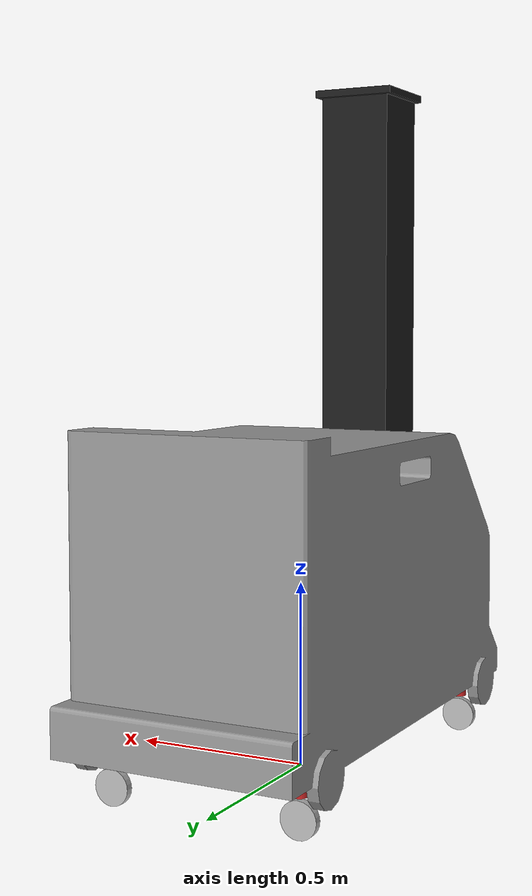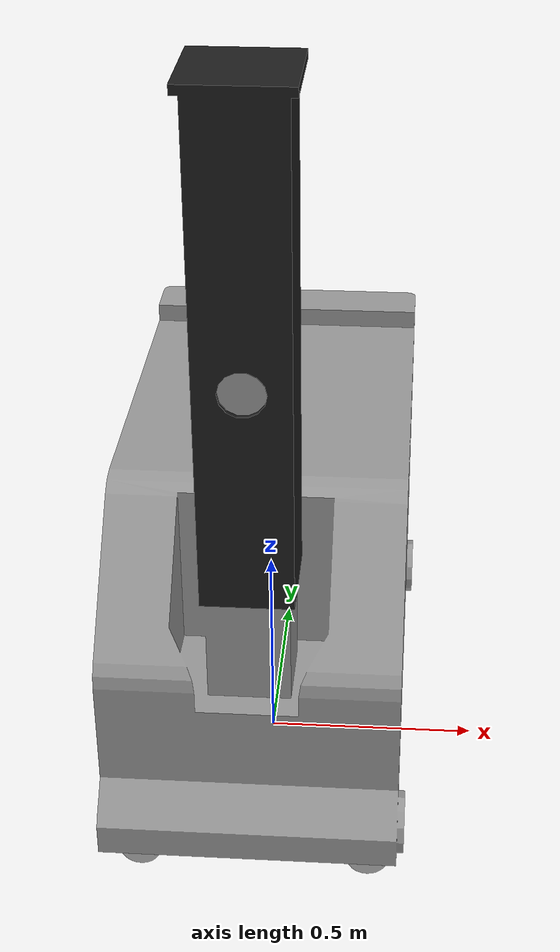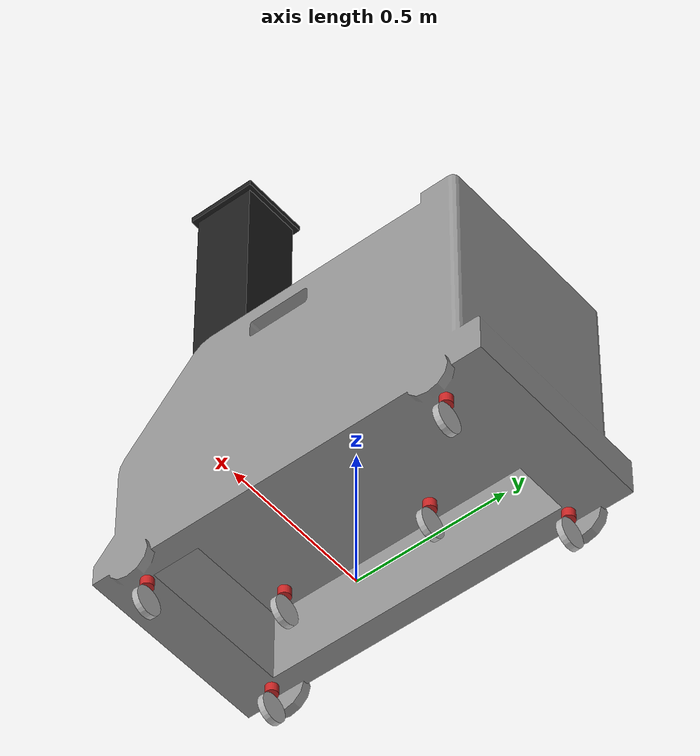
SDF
<?xml version='1.0'?>
<sdf version='1.6'>
  <model name='gtrobot_base'>
    <link name='base_footprint'>
      <pose frame=''>0 0 0 0 -0 0</pose>
      <inertial>
        <pose frame=''>0 0 0 0 -0 0</pose>
        <mass>0.01</mass>
        <inertia>
          <ixx>0.000833416</ixx>
          <ixy>0</ixy>
          <ixz>0</ixz>
          <iyy>0.000833416</iyy>
          <iyz>0</iyz>
          <izz>0.00166667</izz>
        </inertia>
      </inertial>
      <velocity_decay/>
      <gravity>1</gravity>
      <gravity>1</gravity>
      <velocity_decay/>
      <gravity>1</gravity>
      <self_collide>0</self_collide>
      <enable_wind>0</enable_wind>
      <kinematic>0</kinematic>
    </link>
    <link name='x_axis_link'>
      <pose frame=''>0 0 0 0 -0 0</pose>
      <inertial>
        <pose frame=''>0 0 0 0 -0 0</pose>
        <mass>0.01</mass>
        <inertia>
          <ixx>0.000833416</ixx>
          <ixy>0</ixy>
          <ixz>0</ixz>
          <iyy>0.000833416</iyy>
          <iyz>0</iyz>
          <izz>0.00166667</izz>
        </inertia>
      </inertial>
      <gravity>1</gravity>
      <velocity_decay/>
      <gravity>0</gravity>
      <self_collide>0</self_collide>
      <enable_wind>0</enable_wind>
      <kinematic>0</kinematic>
    </link>
    <joint name='x_axis_joint' type='prismatic'>
      <child>x_axis_link</child>
      <parent>base_footprint</parent>
      <axis>
        <xyz>1 0 0</xyz>
        <limit>
          <lower>-5</lower>
          <upper>5</upper>
          <effort>300000</effort>
          <velocity>1</velocity>
        </limit>
        <dynamics>
          <spring_reference>0</spring_reference>
          <spring_stiffness>0</spring_stiffness>
        </dynamics>
        <use_parent_model_frame>1</use_parent_model_frame>
      </axis>
    </joint>
    <link name='y_axis_link'>
      <pose frame=''>0 0 0 0 -0 0</pose>
      <inertial>
        <pose frame=''>0 0 0 0 -0 0</pose>
        <mass>0.01</mass>
        <inertia>
          <ixx>0.000833416</ixx>
          <ixy>0</ixy>
          <ixz>0</ixz>
          <iyy>0.000833416</iyy>
          <iyz>0</iyz>
          <izz>0.00166667</izz>
        </inertia>
      </inertial>
      <gravity>1</gravity>
      <velocity_decay/>
      <gravity>0</gravity>
      <self_collide>0</self_collide>
      <enable_wind>0</enable_wind>
      <kinematic>0</kinematic>
    </link>
    <joint name='y_axis_joint' type='prismatic'>
      <child>y_axis_link</child>
      <parent>x_axis_link</parent>
      <axis>
        <xyz>0 1 0</xyz>
        <limit>
          <lower>-5</lower>
          <upper>5</upper>
          <effort>300000</effort>
          <velocity>1</velocity>
        </limit>
        <dynamics>
          <spring_reference>0</spring_reference>
          <spring_stiffness>0</spring_stiffness>
        </dynamics>
        <use_parent_model_frame>1</use_parent_model_frame>
      </axis>
    </joint>
    <link name='rotate_axis_link'>
      <pose frame=''>0 0 0 0 -0 0</pose>
      <inertial>
        <pose frame=''>0 0 0.559994 0 -0 0</pose>
        <mass>100.001</mass>
        <inertia>
          <ixx>21.667</ixx>
          <ixy>0</ixy>
          <ixz>0</ixz>
          <iyy>8.33364</iyy>
          <iyz>0</iyz>
          <izz>19.3333</izz>
        </inertia>
      </inertial>
      <collision name='rotate_axis_link_fixed_joint_lump__base_link_collision'>
        <pose frame=''>0 0 0.08 0 -0 0</pose>
        <geometry>
          <mesh>
            <scale>1 1 1</scale>
            <uri>model://gtrobot_base/meshes/base_link.STL</uri>
          </mesh>
        </geometry>
        <surface>
          <contact>
            <ode>
              <kp>1e+18</kp>
              <kd>1</kd>
              <min_depth>0.001</min_depth>
            </ode>
          </contact>
          <friction>
            <ode/>
            <torsional>
              <ode/>
            </torsional>
          </friction>
          <bounce/>
        </surface>
        <max_contacts>1</max_contacts>
      </collision>
      <visual name='rotate_axis_link_fixed_joint_lump__base_link_visual'>
        <pose frame=''>0 0 0.08 0 -0 0</pose>
        <geometry>
          <mesh>
            <scale>1 1 1</scale>
            <uri>model://gtrobot_base/meshes/base_link.STL</uri>
          </mesh>
        </geometry>
        <material>
          <script>
            <name>Gazebo/Grey</name>
            <uri>file://media/materials/scripts/gazebo.material</uri>
          </script>
        </material>
      </visual>
      <velocity_decay/>
      <gravity>0</gravity>
      <gravity>1</gravity>
      <velocity_decay/>
      <gravity>1</gravity>
      <self_collide>0</self_collide>
      <enable_wind>0</enable_wind>
      <kinematic>0</kinematic>
    </link>
    <joint name='rotate_axis_joint' type='revolute'>
      <child>rotate_axis_link</child>
      <parent>y_axis_link</parent>
      <axis>
        <xyz>0 0 1</xyz>
        <limit>
          <lower>-1e+16</lower>
          <upper>1e+16</upper>
        </limit>
        <dynamics>
          <spring_reference>0</spring_reference>
          <spring_stiffness>0</spring_stiffness>
        </dynamics>
        <use_parent_model_frame>1</use_parent_model_frame>
      </axis>
    </joint>
    <link name='bl_caster_rotation_link'>
      <pose frame=''>-0.26 0.513 0.12 0 -0 0</pose>
      <inertial>
        <pose frame=''>0 0 0 0 -0 0</pose>
        <mass>1.5</mass>
        <inertia>
          <ixx>0.0009</ixx>
          <ixy>0</ixy>
          <ixz>0</ixz>
          <iyy>0.0009</iyy>
          <iyz>0</iyz>
          <izz>0.0009</izz>
        </inertia>
      </inertial>
      <collision name='bl_caster_rotation_link_collision'>
        <pose frame=''>0 0 0 0 -0 0</pose>
        <geometry>
          <cylinder>
            <length>0.03</length>
            <radius>0.02</radius>
          </cylinder>
        </geometry>
        <surface>
          <contact>
            <ode/>
          </contact>
          <friction>
            <ode/>
            <torsional>
              <ode/>
            </torsional>
          </friction>
          <bounce/>
        </surface>
        <max_contacts>10</max_contacts>
      </collision>
      <visual name='bl_caster_rotation_link_visual'>
        <pose frame=''>0 0 0 0 -0 0</pose>
        <geometry>
          <cylinder>
            <length>0.03</length>
            <radius>0.02</radius>
          </cylinder>
        </geometry>
        <material>
          <script>
            <name>Gazebo/Red</name>
            <uri>file://media/materials/scripts/gazebo.material</uri>
          </script>
        </material>
      </visual>
      <gravity>1</gravity>
      <velocity_decay/>
      <self_collide>0</self_collide>
      <enable_wind>0</enable_wind>
      <kinematic>0</kinematic>
    </link>
    <joint name='bl_caster_rotation_joint' type='revolute'>
      <child>bl_caster_rotation_link</child>
      <parent>rotate_axis_link</parent>
      <axis>
        <xyz>0 0 1</xyz>
        <limit>
          <lower>-1e+16</lower>
          <upper>1e+16</upper>
        </limit>
        <dynamics>
          <damping>1</damping>
          <friction>100000</friction>
          <spring_reference>0</spring_reference>
          <spring_stiffness>0</spring_stiffness>
        </dynamics>
        <use_parent_model_frame>1</use_parent_model_frame>
      </axis>
      <physics>
        <provide_feedback>1</provide_feedback>
        <ode>
          <provide_feedback>1</provide_feedback>
          <fudge_factor>1</fudge_factor>
          <limit>
            <cfm>0</cfm>
            <erp>0.2</erp>
          </limit>
        </ode>
      </physics>
    </joint>
    <link name='bl_caster_wheel_link'>
      <pose frame=''>-0.26 0.513 0.05 0 -0 0</pose>
      <inertial>
        <pose frame=''>0 0 0 0 -0 0</pose>
        <mass>1.5</mass>
        <inertia>
          <ixx>0.000896093</ixx>
          <ixy>0</ixy>
          <ixz>0</ixz>
          <iyy>0.000896093</iyy>
          <iyz>0</iyz>
          <izz>0.00169219</izz>
        </inertia>
      </inertial>
      <collision name='bl_caster_wheel_link_collision'>
        <pose frame=''>0 0 0 1.5708 -0 0</pose>
        <geometry>
          <cylinder>
            <length>0.02</length>
            <radius>0.0475</radius>
          </cylinder>
        </geometry>
        <surface>
          <contact>
            <ode>
              <kp>1e+07</kp>
              <kd>10</kd>
              <min_depth>0.001</min_depth>
            </ode>
          </contact>
          <friction>
            <ode>
              <mu>1</mu>
              <mu2>1</mu2>
              <fdir1>0 0 0</fdir1>
            </ode>
            <torsional>
              <ode/>
            </torsional>
          </friction>
          <bounce/>
        </surface>
        <max_contacts>4</max_contacts>
      </collision>
      <visual name='bl_caster_wheel_link_visual'>
        <pose frame=''>0 0 0 1.5708 -0 0</pose>
        <geometry>
          <cylinder>
            <length>0.02</length>
            <radius>0.0475</radius>
          </cylinder>
        </geometry>
        <material>
          <script>
            <uri>__default__</uri>
            <name>__default__</name>
          </script>
        </material>
      </visual>
      <gravity>1</gravity>
      <velocity_decay/>
      <gravity>1</gravity>
      <self_collide>0</self_collide>
      <enable_wind>0</enable_wind>
      <kinematic>0</kinematic>
    </link>
    <joint name='bl_caster_wheel_joint' type='revolute'>
      <child>bl_caster_wheel_link</child>
      <parent>bl_caster_rotation_link</parent>
      <axis>
        <xyz>0 1 0</xyz>
        <limit>
          <lower>-1e+16</lower>
          <upper>1e+16</upper>
        </limit>
        <dynamics>
          <damping>0.7</damping>
          <friction>100000</friction>
          <spring_reference>0</spring_reference>
          <spring_stiffness>0</spring_stiffness>
        </dynamics>
        <use_parent_model_frame>1</use_parent_model_frame>
      </axis>
      <physics>
        <provide_feedback>1</provide_feedback>
        <ode>
          <provide_feedback>1</provide_feedback>
          <fudge_factor>1</fudge_factor>
          <limit>
            <cfm>0</cfm>
            <erp>0.2</erp>
          </limit>
        </ode>
      </physics>
    </joint>
    <link name='br_caster_rotation_link'>
      <pose frame=''>-0.26 -0.513 0.12 0 -0 0</pose>
      <inertial>
        <pose frame=''>0 0 0 0 -0 0</pose>
        <mass>1.5</mass>
        <inertia>
          <ixx>0.0009</ixx>
          <ixy>0</ixy>
          <ixz>0</ixz>
          <iyy>0.0009</iyy>
          <iyz>0</iyz>
          <izz>0.0009</izz>
        </inertia>
      </inertial>
      <collision name='br_caster_rotation_link_collision'>
        <pose frame=''>0 0 0 0 -0 0</pose>
        <geometry>
          <cylinder>
            <length>0.03</length>
            <radius>0.02</radius>
          </cylinder>
        </geometry>
        <surface>
          <contact>
            <ode/>
          </contact>
          <friction>
            <ode/>
            <torsional>
              <ode/>
            </torsional>
          </friction>
          <bounce/>
        </surface>
        <max_contacts>10</max_contacts>
      </collision>
      <visual name='br_caster_rotation_link_visual'>
        <pose frame=''>0 0 0 0 -0 0</pose>
        <geometry>
          <cylinder>
            <length>0.03</length>
            <radius>0.02</radius>
          </cylinder>
        </geometry>
        <material>
          <script>
            <name>Gazebo/Red</name>
            <uri>file://media/materials/scripts/gazebo.material</uri>
          </script>
        </material>
      </visual>
      <gravity>1</gravity>
      <velocity_decay/>
      <self_collide>0</self_collide>
      <enable_wind>0</enable_wind>
      <kinematic>0</kinematic>
    </link>
    <joint name='br_caster_rotation_joint' type='revolute'>
      <child>br_caster_rotation_link</child>
      <parent>rotate_axis_link</parent>
      <axis>
        <xyz>0 0 1</xyz>
        <limit>
          <lower>-1e+16</lower>
          <upper>1e+16</upper>
        </limit>
        <dynamics>
          <damping>1</damping>
          <friction>100000</friction>
          <spring_reference>0</spring_reference>
          <spring_stiffness>0</spring_stiffness>
        </dynamics>
        <use_parent_model_frame>1</use_parent_model_frame>
      </axis>
      <physics>
        <provide_feedback>1</provide_feedback>
        <ode>
          <provide_feedback>1</provide_feedback>
          <fudge_factor>1</fudge_factor>
          <limit>
            <cfm>0</cfm>
            <erp>0.2</erp>
          </limit>
        </ode>
      </physics>
    </joint>
    <link name='br_caster_wheel_link'>
      <pose frame=''>-0.26 -0.513 0.05 0 -0 0</pose>
      <inertial>
        <pose frame=''>0 0 0 0 -0 0</pose>
        <mass>1.5</mass>
        <inertia>
          <ixx>0.000896093</ixx>
          <ixy>0</ixy>
          <ixz>0</ixz>
          <iyy>0.000896093</iyy>
          <iyz>0</iyz>
          <izz>0.00169219</izz>
        </inertia>
      </inertial>
      <collision name='br_caster_wheel_link_collision'>
        <pose frame=''>0 0 0 1.5708 -0 0</pose>
        <geometry>
          <cylinder>
            <length>0.02</length>
            <radius>0.0475</radius>
          </cylinder>
        </geometry>
        <surface>
          <contact>
            <ode>
              <kp>1e+07</kp>
              <kd>10</kd>
              <min_depth>0.001</min_depth>
            </ode>
          </contact>
          <friction>
            <ode>
              <mu>1</mu>
              <mu2>1</mu2>
              <fdir1>0 0 0</fdir1>
            </ode>
            <torsional>
              <ode/>
            </torsional>
          </friction>
          <bounce/>
        </surface>
        <max_contacts>4</max_contacts>
      </collision>
      <visual name='br_caster_wheel_link_visual'>
        <pose frame=''>0 0 0 1.5708 -0 0</pose>
        <geometry>
          <cylinder>
            <length>0.02</length>
            <radius>0.0475</radius>
          </cylinder>
        </geometry>
        <material>
          <script>
            <uri>__default__</uri>
            <name>__default__</name>
          </script>
        </material>
      </visual>
      <gravity>1</gravity>
      <velocity_decay/>
      <gravity>1</gravity>
      <self_collide>0</self_collide>
      <enable_wind>0</enable_wind>
      <kinematic>0</kinematic>
    </link>
    <joint name='br_caster_wheel_joint' type='revolute'>
      <child>br_caster_wheel_link</child>
      <parent>br_caster_rotation_link</parent>
      <axis>
        <xyz>0 1 0</xyz>
        <limit>
          <lower>-1e+16</lower>
          <upper>1e+16</upper>
        </limit>
        <dynamics>
          <damping>0.7</damping>
          <friction>100000</friction>
          <spring_reference>0</spring_reference>
          <spring_stiffness>0</spring_stiffness>
        </dynamics>
        <use_parent_model_frame>1</use_parent_model_frame>
      </axis>
      <physics>
        <provide_feedback>1</provide_feedback>
        <ode>
          <provide_feedback>1</provide_feedback>
          <fudge_factor>1</fudge_factor>
          <limit>
            <cfm>0</cfm>
            <erp>0.2</erp>
          </limit>
        </ode>
      </physics>
    </joint>
    <link name='fl_caster_rotation_link'>
      <pose frame=''>0.26 0.513 0.12 0 -0 0</pose>
      <inertial>
        <pose frame=''>0 0 0 0 -0 0</pose>
        <mass>1.5</mass>
        <inertia>
          <ixx>0.0009</ixx>
          <ixy>0</ixy>
          <ixz>0</ixz>
          <iyy>0.0009</iyy>
          <iyz>0</iyz>
          <izz>0.0009</izz>
        </inertia>
      </inertial>
      <collision name='fl_caster_rotation_link_collision'>
        <pose frame=''>0 0 0 0 -0 0</pose>
        <geometry>
          <cylinder>
            <length>0.03</length>
            <radius>0.02</radius>
          </cylinder>
        </geometry>
        <surface>
          <contact>
            <ode/>
          </contact>
          <friction>
            <ode/>
            <torsional>
              <ode/>
            </torsional>
          </friction>
          <bounce/>
        </surface>
        <max_contacts>10</max_contacts>
      </collision>
      <visual name='fl_caster_rotation_link_visual'>
        <pose frame=''>0 0 0 0 -0 0</pose>
        <geometry>
          <cylinder>
            <length>0.03</length>
            <radius>0.02</radius>
          </cylinder>
        </geometry>
        <material>
          <script>
            <name>Gazebo/Red</name>
            <uri>file://media/materials/scripts/gazebo.material</uri>
          </script>
        </material>
      </visual>
      <gravity>1</gravity>
      <velocity_decay/>
      <self_collide>0</self_collide>
      <enable_wind>0</enable_wind>
      <kinematic>0</kinematic>
    </link>
    <joint name='fl_caster_rotation_joint' type='revolute'>
      <child>fl_caster_rotation_link</child>
      <parent>rotate_axis_link</parent>
      <axis>
        <xyz>0 0 1</xyz>
        <limit>
          <lower>-1e+16</lower>
          <upper>1e+16</upper>
        </limit>
        <dynamics>
          <damping>1</damping>
          <friction>100000</friction>
          <spring_reference>0</spring_reference>
          <spring_stiffness>0</spring_stiffness>
        </dynamics>
        <use_parent_model_frame>1</use_parent_model_frame>
      </axis>
      <physics>
        <provide_feedback>1</provide_feedback>
        <ode>
          <provide_feedback>1</provide_feedback>
          <fudge_factor>1</fudge_factor>
          <limit>
            <cfm>0</cfm>
            <erp>0.2</erp>
          </limit>
        </ode>
      </physics>
    </joint>
    <link name='fl_caster_wheel_link'>
      <pose frame=''>0.26 0.513 0.05 0 -0 0</pose>
      <inertial>
        <pose frame=''>0 0 0 0 -0 0</pose>
        <mass>1.5</mass>
        <inertia>
          <ixx>0.000896093</ixx>
          <ixy>0</ixy>
          <ixz>0</ixz>
          <iyy>0.000896093</iyy>
          <iyz>0</iyz>
          <izz>0.00169219</izz>
        </inertia>
      </inertial>
      <collision name='fl_caster_wheel_link_collision'>
        <pose frame=''>0 0 0 1.5708 -0 0</pose>
        <geometry>
          <cylinder>
            <length>0.02</length>
            <radius>0.0475</radius>
          </cylinder>
        </geometry>
        <surface>
          <contact>
            <ode>
              <kp>1e+07</kp>
              <kd>10</kd>
              <min_depth>0.001</min_depth>
            </ode>
          </contact>
          <friction>
            <ode>
              <mu>1</mu>
              <mu2>1</mu2>
              <fdir1>0 0 0</fdir1>
            </ode>
            <torsional>
              <ode/>
            </torsional>
          </friction>
          <bounce/>
        </surface>
        <max_contacts>4</max_contacts>
      </collision>
      <visual name='fl_caster_wheel_link_visual'>
        <pose frame=''>0 0 0 1.5708 -0 0</pose>
        <geometry>
          <cylinder>
            <length>0.02</length>
            <radius>0.0475</radius>
          </cylinder>
        </geometry>
        <material>
          <script>
            <uri>__default__</uri>
            <name>__default__</name>
          </script>
        </material>
      </visual>
      <gravity>1</gravity>
      <velocity_decay/>
      <gravity>1</gravity>
      <self_collide>0</self_collide>
      <enable_wind>0</enable_wind>
      <kinematic>0</kinematic>
    </link>
    <joint name='fl_caster_wheel_joint' type='revolute'>
      <child>fl_caster_wheel_link</child>
      <parent>fl_caster_rotation_link</parent>
      <axis>
        <xyz>0 1 0</xyz>
        <limit>
          <lower>-1e+16</lower>
          <upper>1e+16</upper>
        </limit>
        <dynamics>
          <damping>0.7</damping>
          <friction>100000</friction>
          <spring_reference>0</spring_reference>
          <spring_stiffness>0</spring_stiffness>
        </dynamics>
        <use_parent_model_frame>1</use_parent_model_frame>
      </axis>
      <physics>
        <provide_feedback>1</provide_feedback>
        <ode>
          <provide_feedback>1</provide_feedback>
          <fudge_factor>1</fudge_factor>
          <limit>
            <cfm>0</cfm>
            <erp>0.2</erp>
          </limit>
        </ode>
      </physics>
    </joint>
    <link name='fr_caster_rotation_link'>
      <pose frame=''>0.26 -0.513 0.12 0 -0 0</pose>
      <inertial>
        <pose frame=''>0 0 0 0 -0 0</pose>
        <mass>1.5</mass>
        <inertia>
          <ixx>0.0009</ixx>
          <ixy>0</ixy>
          <ixz>0</ixz>
          <iyy>0.0009</iyy>
          <iyz>0</iyz>
          <izz>0.0009</izz>
        </inertia>
      </inertial>
      <collision name='fr_caster_rotation_link_collision'>
        <pose frame=''>0 0 0 0 -0 0</pose>
        <geometry>
          <cylinder>
            <length>0.03</length>
            <radius>0.02</radius>
          </cylinder>
        </geometry>
        <surface>
          <contact>
            <ode/>
          </contact>
          <friction>
            <ode/>
            <torsional>
              <ode/>
            </torsional>
          </friction>
          <bounce/>
        </surface>
        <max_contacts>10</max_contacts>
      </collision>
      <visual name='fr_caster_rotation_link_visual'>
        <pose frame=''>0 0 0 0 -0 0</pose>
        <geometry>
          <cylinder>
            <length>0.03</length>
            <radius>0.02</radius>
          </cylinder>
        </geometry>
        <material>
          <script>
            <name>Gazebo/Red</name>
            <uri>file://media/materials/scripts/gazebo.material</uri>
          </script>
        </material>
      </visual>
      <gravity>1</gravity>
      <velocity_decay/>
      <self_collide>0</self_collide>
      <enable_wind>0</enable_wind>
      <kinematic>0</kinematic>
    </link>
    <joint name='fr_caster_rotation_joint' type='revolute'>
      <child>fr_caster_rotation_link</child>
      <parent>rotate_axis_link</parent>
      <axis>
        <xyz>0 0 1</xyz>
        <limit>
          <lower>-1e+16</lower>
          <upper>1e+16</upper>
        </limit>
        <dynamics>
          <damping>1</damping>
          <friction>100000</friction>
          <spring_reference>0</spring_reference>
          <spring_stiffness>0</spring_stiffness>
        </dynamics>
        <use_parent_model_frame>1</use_parent_model_frame>
      </axis>
      <physics>
        <provide_feedback>1</provide_feedback>
        <ode>
          <provide_feedback>1</provide_feedback>
          <fudge_factor>1</fudge_factor>
          <limit>
            <cfm>0</cfm>
            <erp>0.2</erp>
          </limit>
        </ode>
      </physics>
    </joint>
    <link name='fr_caster_wheel_link'>
      <pose frame=''>0.26 -0.513 0.05 0 -0 0</pose>
      <inertial>
        <pose frame=''>0 0 0 0 -0 0</pose>
        <mass>1.5</mass>
        <inertia>
          <ixx>0.000896093</ixx>
          <ixy>0</ixy>
          <ixz>0</ixz>
          <iyy>0.000896093</iyy>
          <iyz>0</iyz>
          <izz>0.00169219</izz>
        </inertia>
      </inertial>
      <collision name='fr_caster_wheel_link_collision'>
        <pose frame=''>0 0 0 1.5708 -0 0</pose>
        <geometry>
          <cylinder>
            <length>0.02</length>
            <radius>0.0475</radius>
          </cylinder>
        </geometry>
        <surface>
          <contact>
            <ode>
              <kp>1e+07</kp>
              <kd>10</kd>
              <min_depth>0.001</min_depth>
            </ode>
          </contact>
          <friction>
            <ode>
              <mu>1</mu>
              <mu2>1</mu2>
              <fdir1>0 0 0</fdir1>
            </ode>
            <torsional>
              <ode/>
            </torsional>
          </friction>
          <bounce/>
        </surface>
        <max_contacts>4</max_contacts>
      </collision>
      <visual name='fr_caster_wheel_link_visual'>
        <pose frame=''>0 0 0 1.5708 -0 0</pose>
        <geometry>
          <cylinder>
            <length>0.02</length>
            <radius>0.0475</radius>
          </cylinder>
        </geometry>
        <material>
          <script>
            <uri>__default__</uri>
            <name>__default__</name>
          </script>
        </material>
      </visual>
      <gravity>1</gravity>
      <velocity_decay/>
      <gravity>1</gravity>
      <self_collide>0</self_collide>
      <enable_wind>0</enable_wind>
      <kinematic>0</kinematic>
    </link>
    <joint name='fr_caster_wheel_joint' type='revolute'>
      <child>fr_caster_wheel_link</child>
      <parent>fr_caster_rotation_link</parent>
      <axis>
        <xyz>0 1 0</xyz>
        <limit>
          <lower>-1e+16</lower>
          <upper>1e+16</upper>
        </limit>
        <dynamics>
          <damping>0.7</damping>
          <friction>100000</friction>
          <spring_reference>0</spring_reference>
          <spring_stiffness>0</spring_stiffness>
        </dynamics>
        <use_parent_model_frame>1</use_parent_model_frame>
      </axis>
      <physics>
        <provide_feedback>1</provide_feedback>
        <ode>
          <provide_feedback>1</provide_feedback>
          <fudge_factor>1</fudge_factor>
          <limit>
            <cfm>0</cfm>
            <erp>0.2</erp>
          </limit>
        </ode>
      </physics>
    </joint>
    <link name='left_caster_rotation_link'>
      <pose frame=''>0 0.25 0.12 0 -0 0</pose>
      <inertial>
        <pose frame=''>0 0 0 0 -0 0</pose>
        <mass>1.5</mass>
        <inertia>
          <ixx>0.0009</ixx>
          <ixy>0</ixy>
          <ixz>0</ixz>
          <iyy>0.0009</iyy>
          <iyz>0</iyz>
          <izz>0.0009</izz>
        </inertia>
      </inertial>
      <collision name='left_caster_rotation_link_collision'>
        <pose frame=''>0 0 0 0 -0 0</pose>
        <geometry>
          <cylinder>
            <length>0.03</length>
            <radius>0.02</radius>
          </cylinder>
        </geometry>
        <surface>
          <contact>
            <ode/>
          </contact>
          <friction>
            <ode/>
            <torsional>
              <ode/>
            </torsional>
          </friction>
          <bounce/>
        </surface>
        <max_contacts>10</max_contacts>
      </collision>
      <visual name='left_caster_rotation_link_visual'>
        <pose frame=''>0 0 0 0 -0 0</pose>
        <geometry>
          <cylinder>
            <length>0.03</length>
            <radius>0.02</radius>
          </cylinder>
        </geometry>
        <material>
          <script>
            <name>Gazebo/Red</name>
            <uri>file://media/materials/scripts/gazebo.material</uri>
          </script>
        </material>
      </visual>
      <gravity>1</gravity>
      <velocity_decay/>
      <self_collide>0</self_collide>
      <enable_wind>0</enable_wind>
      <kinematic>0</kinematic>
    </link>
    <joint name='left_caster_rotation_joint' type='revolute'>
      <child>left_caster_rotation_link</child>
      <parent>rotate_axis_link</parent>
      <axis>
        <xyz>0 0 1</xyz>
        <limit>
          <lower>-1e+16</lower>
          <upper>1e+16</upper>
        </limit>
        <dynamics>
          <damping>1</damping>
          <friction>100000</friction>
          <spring_reference>0</spring_reference>
          <spring_stiffness>0</spring_stiffness>
        </dynamics>
        <use_parent_model_frame>1</use_parent_model_frame>
      </axis>
      <physics>
        <provide_feedback>1</provide_feedback>
        <ode>
          <provide_feedback>1</provide_feedback>
          <fudge_factor>1</fudge_factor>
          <limit>
            <cfm>0</cfm>
            <erp>0.2</erp>
          </limit>
        </ode>
      </physics>
    </joint>
    <link name='left_caster_wheel_link'>
      <pose frame=''>0 0.25 0.05 0 -0 0</pose>
      <inertial>
        <pose frame=''>0 0 0 0 -0 0</pose>
        <mass>1.5</mass>
        <inertia>
          <ixx>0.000896093</ixx>
          <ixy>0</ixy>
          <ixz>0</ixz>
          <iyy>0.000896093</iyy>
          <iyz>0</iyz>
          <izz>0.00169219</izz>
        </inertia>
      </inertial>
      <collision name='left_caster_wheel_link_collision'>
        <pose frame=''>0 0 0 1.5708 -0 0</pose>
        <geometry>
          <cylinder>
            <length>0.02</length>
            <radius>0.0475</radius>
          </cylinder>
        </geometry>
        <surface>
          <contact>
            <ode>
              <kp>1e+07</kp>
              <kd>10</kd>
              <min_depth>0.001</min_depth>
            </ode>
          </contact>
          <friction>
            <ode>
              <mu>1</mu>
              <mu2>1</mu2>
              <fdir1>0 0 0</fdir1>
            </ode>
            <torsional>
              <ode/>
            </torsional>
          </friction>
          <bounce/>
        </surface>
        <max_contacts>4</max_contacts>
      </collision>
      <visual name='left_caster_wheel_link_visual'>
        <pose frame=''>0 0 0 1.5708 -0 0</pose>
        <geometry>
          <cylinder>
            <length>0.02</length>
            <radius>0.0475</radius>
          </cylinder>
        </geometry>
        <material>
          <script>
            <uri>__default__</uri>
            <name>__default__</name>
          </script>
        </material>
      </visual>
      <gravity>1</gravity>
      <velocity_decay/>
      <gravity>1</gravity>
      <self_collide>0</self_collide>
      <enable_wind>0</enable_wind>
      <kinematic>0</kinematic>
    </link>
    <joint name='left_caster_wheel_joint' type='revolute'>
      <child>left_caster_wheel_link</child>
      <parent>left_caster_rotation_link</parent>
      <axis>
        <xyz>0 1 0</xyz>
        <limit>
          <lower>-1e+16</lower>
          <upper>1e+16</upper>
        </limit>
        <dynamics>
          <damping>0.7</damping>
          <friction>100000</friction>
          <spring_reference>0</spring_reference>
          <spring_stiffness>0</spring_stiffness>
        </dynamics>
        <use_parent_model_frame>1</use_parent_model_frame>
      </axis>
      <physics>
        <provide_feedback>1</provide_feedback>
        <ode>
          <provide_feedback>1</provide_feedback>
          <fudge_factor>1</fudge_factor>
          <limit>
            <cfm>0</cfm>
            <erp>0.2</erp>
          </limit>
        </ode>
      </physics>
    </joint>
    <link name='right_caster_rotation_link'>
      <pose frame=''>0 -0.25 0.12 0 -0 0</pose>
      <inertial>
        <pose frame=''>0 0 0 0 -0 0</pose>
        <mass>1.5</mass>
        <inertia>
          <ixx>0.0009</ixx>
          <ixy>0</ixy>
          <ixz>0</ixz>
          <iyy>0.0009</iyy>
          <iyz>0</iyz>
          <izz>0.0009</izz>
        </inertia>
      </inertial>
      <collision name='right_caster_rotation_link_collision'>
        <pose frame=''>0 0 0 0 -0 0</pose>
        <geometry>
          <cylinder>
            <length>0.03</length>
            <radius>0.02</radius>
          </cylinder>
        </geometry>
        <surface>
          <contact>
            <ode/>
          </contact>
          <friction>
            <ode/>
            <torsional>
              <ode/>
            </torsional>
          </friction>
          <bounce/>
        </surface>
        <max_contacts>10</max_contacts>
      </collision>
      <visual name='right_caster_rotation_link_visual'>
        <pose frame=''>0 0 0 0 -0 0</pose>
        <geometry>
          <cylinder>
            <length>0.03</length>
            <radius>0.02</radius>
          </cylinder>
        </geometry>
        <material>
          <script>
            <name>Gazebo/Red</name>
            <uri>file://media/materials/scripts/gazebo.material</uri>
          </script>
        </material>
      </visual>
      <gravity>1</gravity>
      <velocity_decay/>
      <self_collide>0</self_collide>
      <enable_wind>0</enable_wind>
      <kinematic>0</kinematic>
    </link>
    <joint name='right_caster_rotation_joint' type='revolute'>
      <child>right_caster_rotation_link</child>
      <parent>rotate_axis_link</parent>
      <axis>
        <xyz>0 0 1</xyz>
        <limit>
          <lower>-1e+16</lower>
          <upper>1e+16</upper>
        </limit>
        <dynamics>
          <damping>1</damping>
          <friction>100000</friction>
          <spring_reference>0</spring_reference>
          <spring_stiffness>0</spring_stiffness>
        </dynamics>
        <use_parent_model_frame>1</use_parent_model_frame>
      </axis>
      <physics>
        <provide_feedback>1</provide_feedback>
        <ode>
          <provide_feedback>1</provide_feedback>
          <fudge_factor>1</fudge_factor>
          <limit>
            <cfm>0</cfm>
            <erp>0.2</erp>
          </limit>
        </ode>
      </physics>
    </joint>
    <link name='right_caster_wheel_link'>
      <pose frame=''>0 -0.25 0.05 0 -0 0</pose>
      <inertial>
        <pose frame=''>0 0 0 0 -0 0</pose>
        <mass>1.5</mass>
        <inertia>
          <ixx>0.000896093</ixx>
          <ixy>0</ixy>
          <ixz>0</ixz>
          <iyy>0.000896093</iyy>
          <iyz>0</iyz>
          <izz>0.00169219</izz>
        </inertia>
      </inertial>
      <collision name='right_caster_wheel_link_collision'>
        <pose frame=''>0 0 0 1.5708 -0 0</pose>
        <geometry>
          <cylinder>
            <length>0.02</length>
            <radius>0.0475</radius>
          </cylinder>
        </geometry>
        <surface>
          <contact>
            <ode>
              <kp>1e+07</kp>
              <kd>10</kd>
              <min_depth>0.001</min_depth>
            </ode>
          </contact>
          <friction>
            <ode>
              <mu>1</mu>
              <mu2>1</mu2>
              <fdir1>0 0 0</fdir1>
            </ode>
            <torsional>
              <ode/>
            </torsional>
          </friction>
          <bounce/>
        </surface>
        <max_contacts>4</max_contacts>
      </collision>
      <visual name='right_caster_wheel_link_visual'>
        <pose frame=''>0 0 0 1.5708 -0 0</pose>
        <geometry>
          <cylinder>
            <length>0.02</length>
            <radius>0.0475</radius>
          </cylinder>
        </geometry>
        <material>
          <script>
            <uri>__default__</uri>
            <name>__default__</name>
          </script>
        </material>
      </visual>
      <gravity>1</gravity>
      <velocity_decay/>
      <gravity>1</gravity>
      <self_collide>0</self_collide>
      <enable_wind>0</enable_wind>
      <kinematic>0</kinematic>
    </link>
    <joint name='right_caster_wheel_joint' type='revolute'>
      <child>right_caster_wheel_link</child>
      <parent>right_caster_rotation_link</parent>
      <axis>
        <xyz>0 1 0</xyz>
        <limit>
          <lower>-1e+16</lower>
          <upper>1e+16</upper>
        </limit>
        <dynamics>
          <damping>0.7</damping>
          <friction>100000</friction>
          <spring_reference>0</spring_reference>
          <spring_stiffness>0</spring_stiffness>
        </dynamics>
        <use_parent_model_frame>1</use_parent_model_frame>
      </axis>
      <physics>
        <provide_feedback>1</provide_feedback>
        <ode>
          <provide_feedback>1</provide_feedback>
          <fudge_factor>1</fudge_factor>
          <limit>
            <cfm>0</cfm>
            <erp>0.2</erp>
          </limit>
        </ode>
      </physics>
    </joint>
    <link name='upper_link'>
      <pose frame=''>0 -0.531 1.239 -1.57079 -1.57079 3.14159</pose>
      <inertial>
        <pose frame=''>0 0 -0.1 1.5708 -0 1.5708</pose>
        <mass>10</mass>
        <inertia>
          <ixx>1.22133</ixx>
          <ixy>0</ixy>
          <ixz>0</ixz>
          <iyy>1.22133</iyy>
          <iyz>0</iyz>
          <izz>0.0426666</izz>
        </inertia>
      </inertial>
      <collision name='upper_link_collision'>
        <pose frame=''>0 0 0 0 -0 0</pose>
        <geometry>
          <mesh>
            <scale>1 1 1</scale>
            <uri>model://gtrobot_base/meshes/upper.STL</uri>
          </mesh>
        </geometry>
        <surface>
          <contact>
            <ode/>
          </contact>
          <friction>
            <ode/>
            <torsional>
              <ode/>
            </torsional>
          </friction>
          <bounce/>
        </surface>
        <max_contacts>10</max_contacts>
      </collision>
      <visual name='upper_link_visual'>
        <pose frame=''>0 0 0 0 -0 0</pose>
        <geometry>
          <mesh>
            <scale>1 1 1</scale>
            <uri>model://gtrobot_base/meshes/upper.STL</uri>
          </mesh>
        </geometry>
        <material>
          <script>
            <name>Gazebo/Black</name>
            <uri>file://media/materials/scripts/gazebo.material</uri>
          </script>
        </material>
      </visual>
      <gravity>1</gravity>
      <velocity_decay/>
      <gravity>1</gravity>
      <self_collide>0</self_collide>
      <enable_wind>0</enable_wind>
      <kinematic>0</kinematic>
    </link>
    <joint name='upper_joint' type='prismatic'>
      <child>upper_link</child>
      <parent>rotate_axis_link</parent>
      <axis>
        <xyz>0 -0 1</xyz>
        <limit>
          <lower>-0</lower>
          <upper>0</upper>
          <effort>10000</effort>
          <velocity>0</velocity>
        </limit>
        <dynamics>
          <spring_reference>0</spring_reference>
          <spring_stiffness>0</spring_stiffness>
        </dynamics>
        <use_parent_model_frame>1</use_parent_model_frame>
      </axis>
    </joint>
    <static>0</static>
    <pose frame=''>0 0 0 0 -0 0</pose>
  </model>
</sdf>
